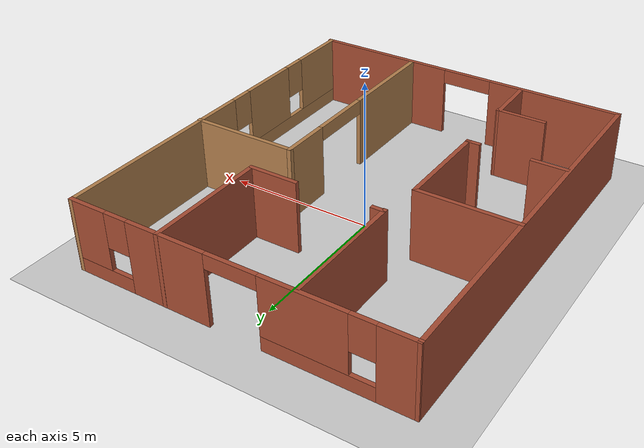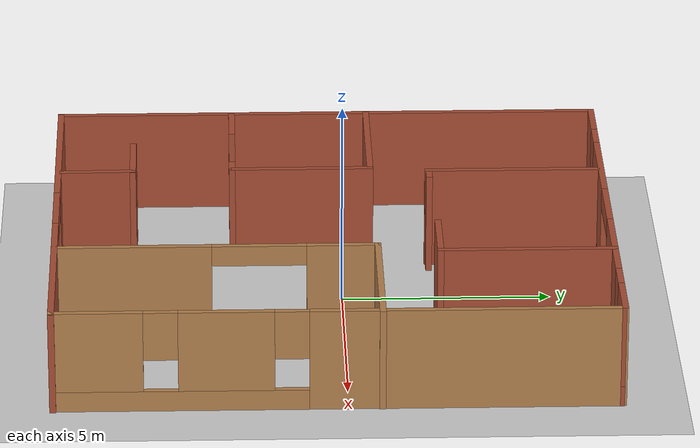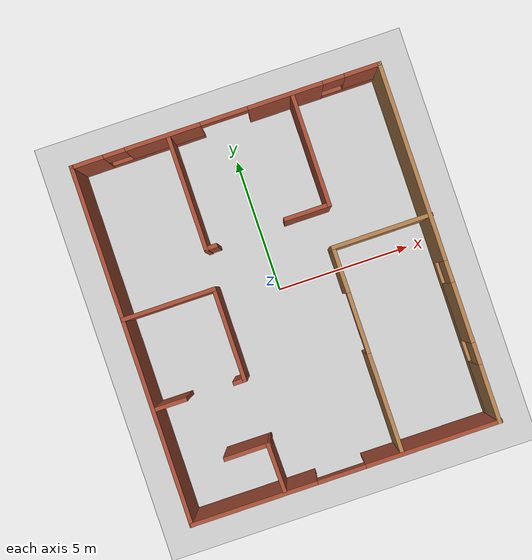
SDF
<sdf version="1.7">
 <world name="default">
  <light name="sun" type="directional">
   <pose>0 0 10 0 -0 0</pose>
   <diffuse>0.8 0.8 0.8 1</diffuse>
   <specular>0.2 0.2 0.2 1</specular>
   <attenuation>
    <range>1000</range>
    <constant>0.9</constant>
    <linear>0.01</linear>
    <quadratic>0.001</quadratic>
   </attenuation>
   <direction>-0.5 0.1 -0.9</direction>
   <spot><inner_angle>0</inner_angle><outer_angle>0</outer_angle><falloff>0</falloff></spot>
  </light>
  <model name="ground_plane">
   <static>1</static>
   <link name="link">
    <collision name="collision">
     <geometry><plane><normal>0 0 1</normal><size>100 100</size></plane></geometry>
     <surface><friction><ode><mu>100</mu><mu2>50</mu2></ode></friction></surface>
    </collision>
    <visual name="visual">
     <cast_shadows>0</cast_shadows>
     <geometry><plane><normal>0 0 1</normal><size>100 100</size></plane></geometry>
     <material>
      <script><uri>file://media/materials/scripts/gazebo.material</uri><name>Gazebo/Grey</name></script>
     </material>
    </visual>
   </link>
  </model>
  <gravity>0 0 -9.8</gravity>
  <magnetic_field>6e-06 2.3e-05 -4.2e-05</magnetic_field>
  <atmosphere type="adiabatic"/>
  <physics type="ode">
   <max_step_size>0.001</max_step_size>
   <real_time_factor>1</real_time_factor>
   <real_time_update_rate>1000</real_time_update_rate>
  </physics>
  <scene><ambient>0.4 0.4 0.4 1</ambient><background>0.7 0.7 0.7 1</background><shadows>1</shadows></scene>
  <audio><device>default</device></audio>
  <spherical_coordinates>
   <surface_model>EARTH_WGS84</surface_model>
   <latitude_deg>0</latitude_deg>
   <longitude_deg>0</longitude_deg>
   <elevation>0</elevation>
   <heading_deg>0</heading_deg>
  </spherical_coordinates>
  <model name="chinic_red">
   <pose>0.146899 -0.241473 0 0 -0 0</pose>
   <link name="Wall_0">
    <pose>-0.005066 6.58727 0 0 -0 0</pose>
    <visual name="Wall_0_Visual_0">
     <pose>-5.12882 0 1.25 0 -0 0</pose>
     <geometry><box><size>1.24235 0.15 2.5</size></box></geometry>
     <material>
      <script><uri>file://media/materials/scripts/gazebo.material</uri><name>Gazebo/Bricks</name></script>
      <ambient>1 1 1 1</ambient>
     </material>
     <meta><layer>0</layer></meta>
    </visual>
    <collision name="Wall_0_Collision_0">
     <geometry><box><size>1.24235 0.15 2.5</size></box></geometry>
     <pose>-5.12882 0 1.25 0 -0 0</pose>
    </collision>
    <visual name="Wall_0_Visual_1">
     <pose>2.20033 0 1.25 0 -0 0</pose>
     <geometry><box><size>2.76626 0.15 2.5</size></box></geometry>
     <material>
      <script><uri>file://media/materials/scripts/gazebo.material</uri><name>Gazebo/Bricks</name></script>
      <ambient>1 1 1 1</ambient>
     </material>
     <meta><layer>0</layer></meta>
    </visual>
    <collision name="Wall_0_Collision_1">
     <geometry><box><size>2.76626 0.15 2.5</size></box></geometry>
     <pose>2.20033 0 1.25 0 -0 0</pose>
    </collision>
    <visual name="Wall_0_Visual_2">
     <pose>-2.72001 0 0.25 0 -0 0</pose>
     <geometry><box><size>3.57529 0.15 0.5</size></box></geometry>
     <material>
      <script><uri>file://media/materials/scripts/gazebo.material</uri><name>Gazebo/Bricks</name></script>
      <ambient>1 1 1 1</ambient>
     </material>
     <meta><layer>0</layer></meta>
    </visual>
    <collision name="Wall_0_Collision_2">
     <geometry><box><size>3.57529 0.15 0.5</size></box></geometry>
     <pose>-2.72001 0 0.25 0 -0 0</pose>
    </collision>
    <visual name="Wall_0_Visual_3">
     <pose>4.66673 0 0.25 0 -0 0</pose>
     <geometry><box><size>2.16654 0.15 0.5</size></box></geometry>
     <material>
      <script><uri>file://media/materials/scripts/gazebo.material</uri><name>Gazebo/Bricks</name></script>
      <ambient>1 1 1 1</ambient>
     </material>
     <meta><layer>0</layer></meta>
    </visual>
    <collision name="Wall_0_Collision_3">
     <geometry><box><size>2.16654 0.15 0.5</size></box></geometry>
     <pose>4.66673 0 0.25 0 -0 0</pose>
    </collision>
    <visual name="Wall_0_Visual_4">
     <pose>-2.32001 0 1.5 0 -0 0</pose>
     <geometry><box><size>2.77528 0.15 2</size></box></geometry>
     <material>
      <script><uri>file://media/materials/scripts/gazebo.material</uri><name>Gazebo/Bricks</name></script>
      <ambient>1 1 1 1</ambient>
     </material>
     <meta><layer>0</layer></meta>
    </visual>
    <collision name="Wall_0_Collision_4">
     <geometry><box><size>2.77528 0.15 2</size></box></geometry>
     <pose>-2.32001 0 1.5 0 -0 0</pose>
    </collision>
    <visual name="Wall_0_Visual_5">
     <pose>-2.32001 0 1.5 0 -0 0</pose>
     <geometry><box><size>2.77528 0.15 2</size></box></geometry>
     <material>
      <script><uri>file://media/materials/scripts/gazebo.material</uri><name>Gazebo/Bricks</name></script>
      <ambient>1 1 1 1</ambient>
     </material>
     <meta><layer>0</layer></meta>
    </visual>
    <collision name="Wall_0_Collision_5">
     <geometry><box><size>2.77528 0.15 2</size></box></geometry>
     <pose>-2.32001 0 1.5 0 -0 0</pose>
    </collision>
    <visual name="Wall_0_Visual_6">
     <pose>5.06673 0 1.5 0 -0 0</pose>
     <geometry><box><size>1.36654 0.15 2</size></box></geometry>
     <material>
      <script><uri>file://media/materials/scripts/gazebo.material</uri><name>Gazebo/Bricks</name></script>
      <ambient>1 1 1 1</ambient>
     </material>
     <meta><layer>0</layer></meta>
    </visual>
    <collision name="Wall_0_Collision_6">
     <geometry><box><size>1.36654 0.15 2</size></box></geometry>
     <pose>5.06673 0 1.5 0 -0 0</pose>
    </collision>
    <visual name="Wall_0_Visual_7">
     <pose>-4.10765 0 1.9 0 -0 0</pose>
     <geometry><box><size>0.8 0.15 1.2</size></box></geometry>
     <material>
      <script><uri>file://media/materials/scripts/gazebo.material</uri><name>Gazebo/Bricks</name></script>
      <ambient>1 1 1 1</ambient>
     </material>
     <meta><layer>0</layer></meta>
    </visual>
    <collision name="Wall_0_Collision_7">
     <geometry><box><size>0.8 0.15 1.2</size></box></geometry>
     <pose>-4.10765 0 1.9 0 -0 0</pose>
    </collision>
    <visual name="Wall_0_Visual_8">
     <pose>3.98346 0 1.9 0 -0 0</pose>
     <geometry><box><size>0.8 0.15 1.2</size></box></geometry>
     <material>
      <script><uri>file://media/materials/scripts/gazebo.material</uri><name>Gazebo/Bricks</name></script>
      <ambient>1 1 1 1</ambient>
     </material>
     <meta><layer>0</layer></meta>
    </visual>
    <collision name="Wall_0_Collision_8">
     <geometry><box><size>0.8 0.15 1.2</size></box></geometry>
     <pose>3.98346 0 1.9 0 -0 0</pose>
    </collision>
    <visual name="Wall_0_Visual_9">
     <pose>-0.057581 0 2.25 0 -0 0</pose>
     <geometry><box><size>1.74957 0.15 0.5</size></box></geometry>
     <material>
      <script><uri>file://media/materials/scripts/gazebo.material</uri><name>Gazebo/Bricks</name></script>
      <ambient>1 1 1 1</ambient>
     </material>
     <meta><layer>0</layer></meta>
    </visual>
    <collision name="Wall_0_Collision_9">
     <geometry><box><size>1.74957 0.15 0.5</size></box></geometry>
     <pose>-0.057581 0 2.25 0 -0 0</pose>
    </collision>
    <visual name="Wall_0_Visual_10">
     <pose>-0.057581 0 2.25 0 -0 0</pose>
     <geometry><box><size>1.74957 0.15 0.5</size></box></geometry>
     <material>
      <script><uri>file://media/materials/scripts/gazebo.material</uri><name>Gazebo/Bricks</name></script>
      <ambient>1 1 1 1</ambient>
     </material>
     <meta><layer>0</layer></meta>
    </visual>
    <collision name="Wall_0_Collision_10">
     <geometry><box><size>1.74957 0.15 0.5</size></box></geometry>
     <pose>-0.057581 0 2.25 0 -0 0</pose>
    </collision>
   </link>
   <link name="Wall_1">
    <pose>5.66369 -0.001434 0 0 -0 -1.57174</pose>
    <visual name="Wall_1_Visual_0">
     <pose>-3.00164 0 1.25 0 -0 0</pose>
     <geometry><box><size>7.32425 0.15 2.5</size></box></geometry>
     <material>
      <script><uri>file://media/materials/scripts/gazebo.material</uri><name>Gazebo/Wood</name></script>
      <ambient>1 1 1 1</ambient>
     </material>
     <meta><layer>0</layer></meta>
    </visual>
    <collision name="Wall_1_Collision_0">
     <geometry><box><size>7.32425 0.15 2.5</size></box></geometry>
     <pose>-3.00164 0 1.25 0 -0 0</pose>
    </collision>
    <visual name="Wall_1_Visual_1">
     <pose>3.66213 0 0.25 0 -0 0</pose>
     <geometry><box><size>6.00328 0.15 0.5</size></box></geometry>
     <material>
      <script><uri>file://media/materials/scripts/gazebo.material</uri><name>Gazebo/Wood</name></script>
      <ambient>1 1 1 1</ambient>
     </material>
     <meta><layer>0</layer></meta>
    </visual>
    <collision name="Wall_1_Collision_1">
     <geometry><box><size>6.00328 0.15 0.5</size></box></geometry>
     <pose>3.66213 0 0.25 0 -0 0</pose>
    </collision>
    <visual name="Wall_1_Visual_2">
     <pose>2.57319 0 1.5 0 -0 0</pose>
     <geometry><box><size>2.22541 0.15 2</size></box></geometry>
     <material>
      <script><uri>file://media/materials/scripts/gazebo.material</uri><name>Gazebo/Wood</name></script>
      <ambient>1 1 1 1</ambient>
     </material>
     <meta><layer>0</layer></meta>
    </visual>
    <collision name="Wall_1_Collision_2">
     <geometry><box><size>2.22541 0.15 2</size></box></geometry>
     <pose>2.57319 0 1.5 0 -0 0</pose>
    </collision>
    <visual name="Wall_1_Visual_3">
     <pose>5.57483 0 1.5 0 -0 0</pose>
     <geometry><box><size>2.17788 0.15 2</size></box></geometry>
     <material>
      <script><uri>file://media/materials/scripts/gazebo.material</uri><name>Gazebo/Wood</name></script>
      <ambient>1 1 1 1</ambient>
     </material>
     <meta><layer>0</layer></meta>
    </visual>
    <collision name="Wall_1_Collision_3">
     <geometry><box><size>2.17788 0.15 2</size></box></geometry>
     <pose>5.57483 0 1.5 0 -0 0</pose>
    </collision>
    <visual name="Wall_1_Visual_4">
     <pose>1.06048 0 1.9 0 -0 0</pose>
     <geometry><box><size>0.8 0.15 1.2</size></box></geometry>
     <material>
      <script><uri>file://media/materials/scripts/gazebo.material</uri><name>Gazebo/Wood</name></script>
      <ambient>1 1 1 1</ambient>
     </material>
     <meta><layer>0</layer></meta>
    </visual>
    <collision name="Wall_1_Collision_4">
     <geometry><box><size>0.8 0.15 1.2</size></box></geometry>
     <pose>1.06048 0 1.9 0 -0 0</pose>
    </collision>
    <visual name="Wall_1_Visual_5">
     <pose>4.08589 0 1.9 0 -0 0</pose>
     <geometry><box><size>0.8 0.15 1.2</size></box></geometry>
     <material>
      <script><uri>file://media/materials/scripts/gazebo.material</uri><name>Gazebo/Wood</name></script>
      <ambient>1 1 1 1</ambient>
     </material>
     <meta><layer>0</layer></meta>
    </visual>
    <collision name="Wall_1_Collision_5">
     <geometry><box><size>0.8 0.15 1.2</size></box></geometry>
     <pose>4.08589 0 1.9 0 -0 0</pose>
    </collision>
   </link>
   <link name="Wall_11">
    <collision name="Wall_11_Collision">
     <geometry><box><size>3.5 0.15 2.5</size></box></geometry>
     <pose>0 0 1.25 0 -0 0</pose>
    </collision>
    <visual name="Wall_11_Visual">
     <pose>0 0 1.25 0 -0 0</pose>
     <geometry><box><size>3.5 0.15 2.5</size></box></geometry>
     <material>
      <script><uri>file://media/materials/scripts/gazebo.material</uri><name>Gazebo/Bricks</name></script>
      <ambient>1 1 1 1</ambient>
     </material>
     <meta><layer>0</layer></meta>
    </visual>
    <pose>-3.99823 0.976017 0 0 -0 0</pose>
   </link>
   <link name="Wall_12">
    <collision name="Wall_12_Collision">
     <geometry><box><size>3.5 0.15 2.5</size></box></geometry>
     <pose>0 0 1.25 0 -0 0</pose>
    </collision>
    <visual name="Wall_12_Visual">
     <pose>0 0 1.25 0 -0 0</pose>
     <geometry><box><size>3.5 0.15 2.5</size></box></geometry>
     <material>
      <script><uri>file://media/materials/scripts/gazebo.material</uri><name>Gazebo/Bricks</name></script>
      <ambient>1 1 1 1</ambient>
     </material>
     <meta><layer>0</layer></meta>
    </visual>
    <pose>-2.32323 -0.698983 0 0 -0 -1.5708</pose>
   </link>
   <link name="Wall_13">
    <collision name="Wall_13_Collision">
     <geometry><box><size>0.5 0.15 2.5</size></box></geometry>
     <pose>0 0 1.25 0 -0 0</pose>
    </collision>
    <visual name="Wall_13_Visual">
     <pose>0 0 1.25 0 -0 0</pose>
     <geometry><box><size>0.5 0.15 2.5</size></box></geometry>
     <material>
      <script><uri>file://media/materials/scripts/gazebo.material</uri><name>Gazebo/Bricks</name></script>
      <ambient>1 1 1 1</ambient>
     </material>
     <meta><layer>0</layer></meta>
    </visual>
    <pose>-2.49823 -2.37398 0 0 -0 3.14159</pose>
   </link>
   <link name="Wall_15">
    <collision name="Wall_15_Collision">
     <geometry><box><size>1.25 0.15 2.5</size></box></geometry>
     <pose>0 0 1.25 0 -0 0</pose>
    </collision>
    <visual name="Wall_15_Visual">
     <pose>0 0 1.25 0 -0 0</pose>
     <geometry><box><size>1.25 0.15 2.5</size></box></geometry>
     <material>
      <script><uri>file://media/materials/scripts/gazebo.material</uri><name>Gazebo/Bricks</name></script>
      <ambient>1 1 1 1</ambient>
     </material>
     <meta><layer>0</layer></meta>
    </visual>
    <pose>-5.06289 -2.36284 0 0 -0 0</pose>
   </link>
   <link name="Wall_18">
    <collision name="Wall_18_Collision">
     <geometry><box><size>1.84205 0.15 2.5</size></box></geometry>
     <pose>0 0 1.25 0 -0 0</pose>
    </collision>
    <visual name="Wall_18_Visual">
     <pose>0 0 1.25 0 -0 0</pose>
     <geometry><box><size>1.84205 0.15 2.5</size></box></geometry>
     <material>
      <script><uri>file://media/materials/scripts/gazebo.material</uri><name>Gazebo/Bricks</name></script>
      <ambient>1 1 1 1</ambient>
     </material>
     <meta><layer>0</layer></meta>
    </visual>
    <pose>-2.24955 -5.62869 0 0 -0 -1.55272</pose>
   </link>
   <link name="Wall_2">
    <pose>0.017624 -6.59014 0 0 -0 3.14159</pose>
    <visual name="Wall_2_Visual_0">
     <pose>-3.2335 0 1.25 0 -0 0</pose>
     <geometry><box><size>5.03299 0.15 2.5</size></box></geometry>
     <material>
      <script><uri>file://media/materials/scripts/gazebo.material</uri><name>Gazebo/Bricks</name></script>
      <ambient>1 1 1 1</ambient>
     </material>
     <meta><layer>0</layer></meta>
    </visual>
    <collision name="Wall_2_Collision_0">
     <geometry><box><size>5.03299 0.15 2.5</size></box></geometry>
     <pose>-3.2335 0 1.25 0 -0 0</pose>
    </collision>
    <visual name="Wall_2_Visual_1">
     <pose>3.40623 0 1.25 0 -0 0</pose>
     <geometry><box><size>4.68754 0.15 2.5</size></box></geometry>
     <material>
      <script><uri>file://media/materials/scripts/gazebo.material</uri><name>Gazebo/Bricks</name></script>
      <ambient>1 1 1 1</ambient>
     </material>
     <meta><layer>0</layer></meta>
    </visual>
    <collision name="Wall_2_Collision_1">
     <geometry><box><size>4.68754 0.15 2.5</size></box></geometry>
     <pose>3.40623 0 1.25 0 -0 0</pose>
    </collision>
    <visual name="Wall_2_Visual_2">
     <pose>0.172729 0 2.25 0 -0 0</pose>
     <geometry><box><size>1.77947 0.15 0.5</size></box></geometry>
     <material>
      <script><uri>file://media/materials/scripts/gazebo.material</uri><name>Gazebo/Bricks</name></script>
      <ambient>1 1 1 1</ambient>
     </material>
     <meta><layer>0</layer></meta>
    </visual>
    <collision name="Wall_2_Collision_2">
     <geometry><box><size>1.77947 0.15 0.5</size></box></geometry>
     <pose>0.172729 0 2.25 0 -0 0</pose>
    </collision>
   </link>
   <link name="Wall_20">
    <collision name="Wall_20_Collision">
     <geometry><box><size>3.75 0.15 2.5</size></box></geometry>
     <pose>0 0 1.25 0 -0 0</pose>
    </collision>
    <visual name="Wall_20_Visual">
     <pose>0 0 1.25 0 -0 0</pose>
     <geometry><box><size>3.75 0.15 2.5</size></box></geometry>
     <material>
      <script><uri>file://media/materials/scripts/gazebo.material</uri><name>Gazebo/Wood</name></script>
      <ambient>1 1 1 1</ambient>
     </material>
     <meta><layer>0</layer></meta>
    </visual>
    <pose>3.89013 1.02297 0 0 -0 0</pose>
   </link>
   <link name="Wall_26">
    <collision name="Wall_26_Collision">
     <geometry><box><size>1.75 0.15 2.5</size></box></geometry>
     <pose>0 0 1.25 0 -0 0</pose>
    </collision>
    <visual name="Wall_26_Visual">
     <pose>0 0 1.25 0 -0 0</pose>
     <geometry><box><size>1.75 0.15 2.5</size></box></geometry>
     <material>
      <script><uri>file://media/materials/scripts/gazebo.material</uri><name>Gazebo/Bricks</name></script>
      <ambient>1 1 1 1</ambient>
     </material>
     <meta><layer>0</layer></meta>
    </visual>
    <pose>-3.02967 -4.7828 0 0 -0 3.14159</pose>
   </link>
   <link name="Wall_28">
    <pose>2.09013 -2.77703 0 0 -0 -1.5708</pose>
    <visual name="Wall_28_Visual_0">
     <pose>-2.99957 0 1.25 0 -0 0</pose>
     <geometry><box><size>1.75087 0.15 2.5</size></box></geometry>
     <material>
      <script><uri>file://media/materials/scripts/gazebo.material</uri><name>Gazebo/Wood</name></script>
      <ambient>1 1 1 1</ambient>
     </material>
     <meta><layer>0</layer></meta>
    </visual>
    <collision name="Wall_28_Collision_0">
     <geometry><box><size>1.75087 0.15 2.5</size></box></geometry>
     <pose>-2.99957 0 1.25 0 -0 0</pose>
    </collision>
    <visual name="Wall_28_Visual_1">
     <pose>1.99295 0 1.25 0 -0 0</pose>
     <geometry><box><size>3.7641 0.15 2.5</size></box></geometry>
     <material>
      <script><uri>file://media/materials/scripts/gazebo.material</uri><name>Gazebo/Wood</name></script>
      <ambient>1 1 1 1</ambient>
     </material>
     <meta><layer>0</layer></meta>
    </visual>
    <collision name="Wall_28_Collision_1">
     <geometry><box><size>3.7641 0.15 2.5</size></box></geometry>
     <pose>1.99295 0 1.25 0 -0 0</pose>
    </collision>
    <visual name="Wall_28_Visual_2">
     <pose>-1.00662 0 2.25 0 -0 0</pose>
     <geometry><box><size>2.23503 0.15 0.5</size></box></geometry>
     <material>
      <script><uri>file://media/materials/scripts/gazebo.material</uri><name>Gazebo/Wood</name></script>
      <ambient>1 1 1 1</ambient>
     </material>
     <meta><layer>0</layer></meta>
    </visual>
    <collision name="Wall_28_Collision_2">
     <geometry><box><size>2.23503 0.15 0.5</size></box></geometry>
     <pose>-1.00662 0 2.25 0 -0 0</pose>
    </collision>
   </link>
   <link name="Wall_3">
    <collision name="Wall_3_Collision">
     <geometry><box><size>13.3275 0.15 2.5</size></box></geometry>
     <pose>0 0 1.25 0 -0 0</pose>
    </collision>
    <visual name="Wall_3_Visual">
     <pose>0 0 1.25 0 -0 0</pose>
     <geometry><box><size>13.3275 0.15 2.5</size></box></geometry>
     <material>
      <script><uri>file://media/materials/scripts/gazebo.material</uri><name>Gazebo/Bricks</name></script>
      <ambient>1 1 1 1</ambient>
     </material>
     <meta><layer>0</layer></meta>
    </visual>
    <pose>-5.68631 -0.001434 0 0 -0 1.56985</pose>
   </link>
   <link name="Wall_5">
    <collision name="Wall_5_Collision">
     <geometry><box><size>4.25 0.15 2.5</size></box></geometry>
     <pose>0 0 1.25 0 -0 0</pose>
    </collision>
    <visual name="Wall_5_Visual">
     <pose>0 0 1.25 0 -0 0</pose>
     <geometry><box><size>4.25 0.15 2.5</size></box></geometry>
     <material>
      <script><uri>file://media/materials/scripts/gazebo.material</uri><name>Gazebo/Bricks</name></script>
      <ambient>1 1 1 1</ambient>
     </material>
     <meta><layer>0</layer></meta>
    </visual>
    <pose>-2.14108 4.42462 0 0 -0 -1.5708</pose>
   </link>
   <link name="Wall_6">
    <collision name="Wall_6_Collision">
     <geometry><box><size>0.5 0.15 2.5</size></box></geometry>
     <pose>0 0 1.25 0 -0 0</pose>
    </collision>
    <visual name="Wall_6_Visual">
     <pose>0 0 1.25 0 -0 0</pose>
     <geometry><box><size>0.5 0.15 2.5</size></box></geometry>
     <material>
      <script><uri>file://media/materials/scripts/gazebo.material</uri><name>Gazebo/Bricks</name></script>
      <ambient>1 1 1 1</ambient>
     </material>
     <meta><layer>0</layer></meta>
    </visual>
    <pose>-1.96608 2.39775 0 0 -0 0</pose>
   </link>
   <link name="Wall_8">
    <collision name="Wall_8_Collision">
     <geometry><box><size>4.25 0.15 2.5</size></box></geometry>
     <pose>0 0 1.25 0 -0 0</pose>
    </collision>
    <visual name="Wall_8_Visual">
     <pose>0 0 1.25 0 -0 0</pose>
     <geometry><box><size>4.25 0.15 2.5</size></box></geometry>
     <material>
      <script><uri>file://media/materials/scripts/gazebo.material</uri><name>Gazebo/Bricks</name></script>
      <ambient>1 1 1 1</ambient>
     </material>
     <meta><layer>0</layer></meta>
    </visual>
    <pose>2.43878 4.54027 0 0 -0 -1.5708</pose>
   </link>
   <link name="Wall_9">
    <collision name="Wall_9_Collision">
     <geometry><box><size>1.75 0.15 2.5</size></box></geometry>
     <pose>0 0 1.25 0 -0 0</pose>
    </collision>
    <visual name="Wall_9_Visual">
     <pose>0 0 1.25 0 -0 0</pose>
     <geometry><box><size>1.75 0.15 2.5</size></box></geometry>
     <material>
      <script><uri>file://media/materials/scripts/gazebo.material</uri><name>Gazebo/Bricks</name></script>
      <ambient>1 1 1 1</ambient>
     </material>
     <meta><layer>0</layer></meta>
    </visual>
    <pose>1.63878 2.49027 0 0 -0 3.14159</pose>
   </link>
   <static>1</static>
  </model>
 </world>
</sdf>
